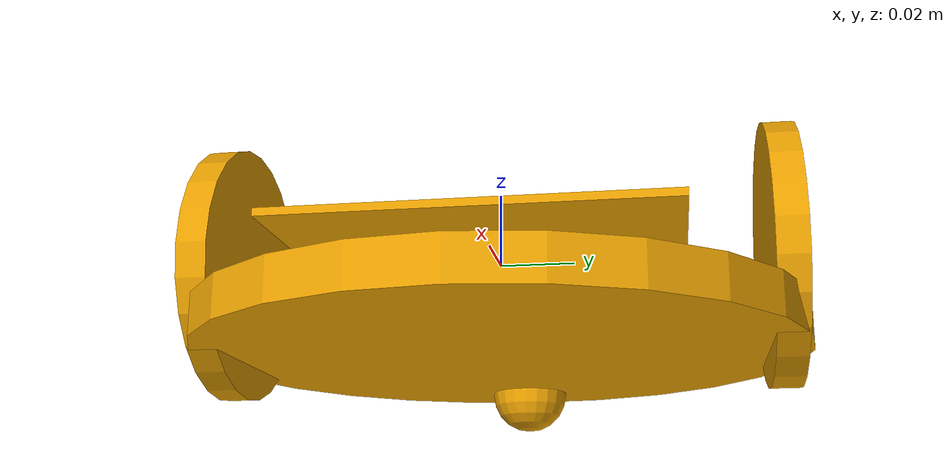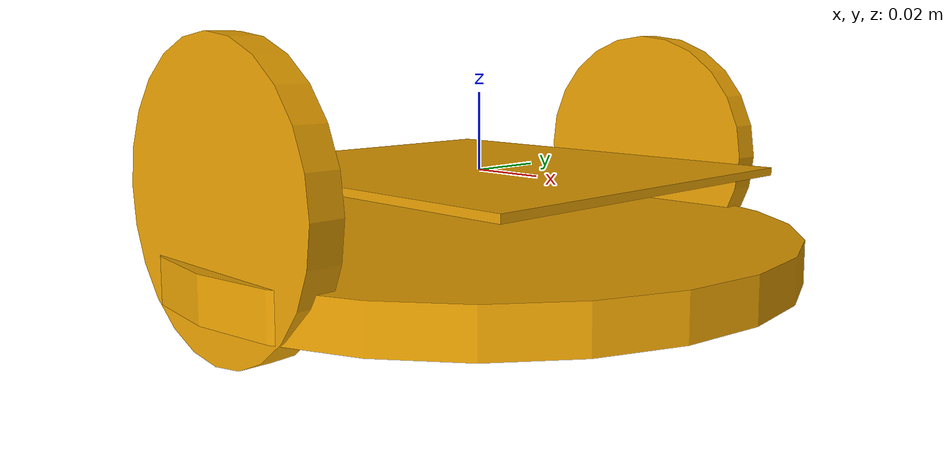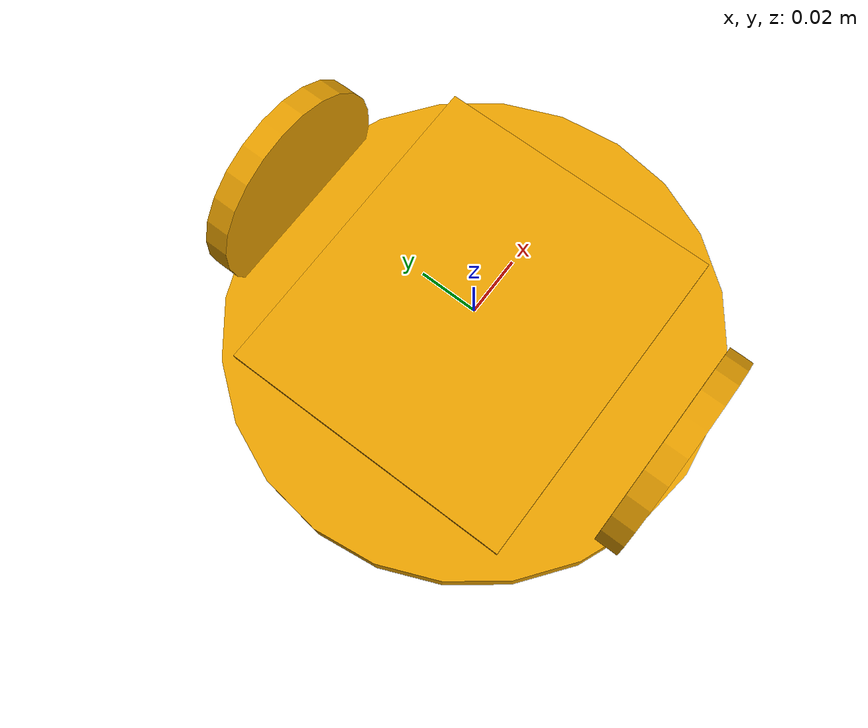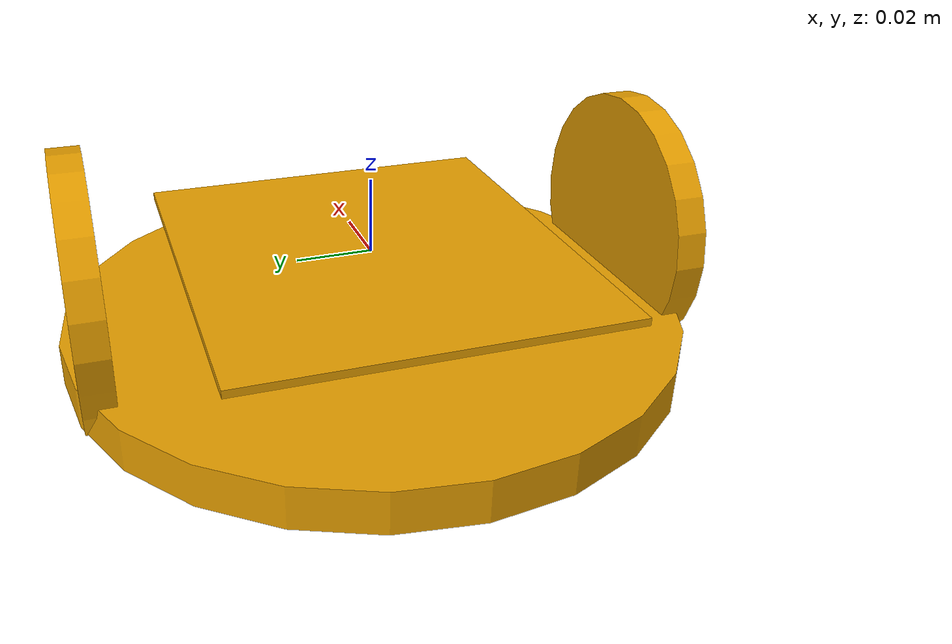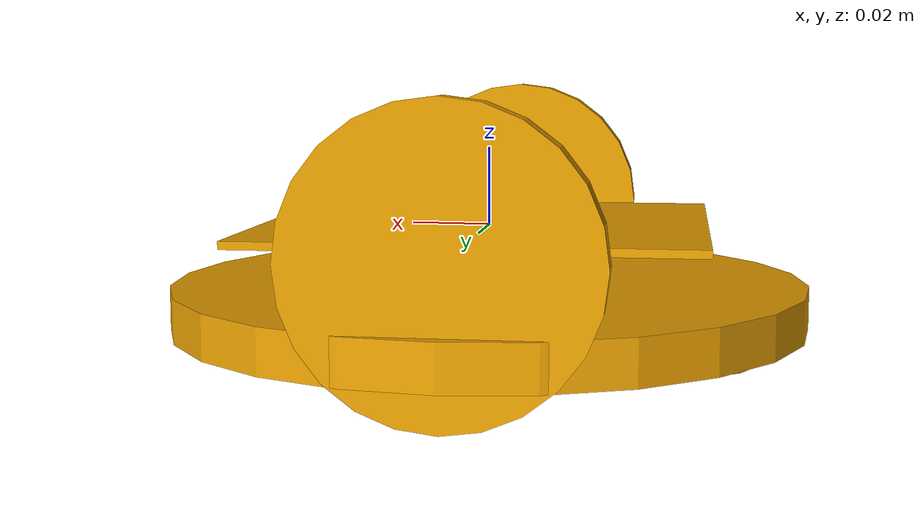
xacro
<?xml version='1.0'?>

<robot name="rslk" xmlns:xacro="http://www.ros.org/wiki/xacro">

  <link name='chassis'>
    <pose>0 0 0.0 0 0 0</pose>

    <inertial>
      <mass value="15.0"/>
      <origin xyz="0.0 0 0" rpy=" 0 0 0"/>
      <inertia
          ixx="0.1" ixy="0" ixz="0"
          iyy="0.1" iyz="0"
          izz="0.1"
      />
    </inertial>

    <collision name='chassis_collision'>
      <origin xyz="0 0 -0.02" rpy=" 0 0 0"/>
      <geometry>
        <cylinder length="0.010" radius="0.0815"/>
      </geometry>
    </collision>

    <visual name='chassis_visual'>
      <origin xyz="0 0 -0.02" rpy=" 0 0 0"/>
      <geometry>
       <cylinder length="0.011" radius="0.0815"/>
      </geometry>
    </visual>

    <collision name='back_caster_collision'>
      <origin xyz="-0.062 0 -0.026" rpy=" 0 0 0"/>
      <geometry>
        <sphere radius="0.0114"/>
      </geometry>
    </collision>

    <visual name='back_caster_visual'>
      <origin xyz="-0.062 0 -0.026" rpy=" 0 0 0"/>
      <geometry>
        <sphere radius="0.0115"/>
      </geometry>
    </visual>

    <collision name='right_wheel_collision'>
      <origin xyz="0 0.074 0" rpy=" 0 1.5707 1.5707"/>
      <geometry>
        <cylinder length="0.00799" radius="0.0349"/>
      </geometry>
    </collision>

    <visual name='right_wheel_visual'>
      <origin xyz="0.0 0.074 0.0" rpy="0 1.5707 1.5707"/>
      <geometry>
       <cylinder length="0.008" radius="0.035"/>
      </geometry>
    </visual>

    <collision name='motor_board_collision'>
      <origin xyz="0 0.0 0" rpy=" 0 0 0"/>
      <geometry>
        <box size="0.112 0.1 0.002"/>
      </geometry>
    </collision>

    <visual name='motor_board_visual'>
      <origin xyz="0.0 0.0 0.0" rpy="0 0 0"/>
      <geometry>
        <box size="0.112 0.1 0.002"/>
      </geometry>
    </visual>

    <collision name='left_wheel_collision'>
      <origin xyz="0 -0.074 0" rpy=" 0 1.5707 1.5707"/>
      <geometry>
        <cylinder length="0.00799" radius="0.0349"/>
      </geometry>
    </collision>

    <visual name='left_wheel_visual'>
      <origin xyz="0.0 -0.074 0.0" rpy="0 1.5707 1.5707"/>
      <geometry>
       <cylinder length="0.008" radius="0.035"/>
      </geometry>
    </visual>

  </link>

</robot>
